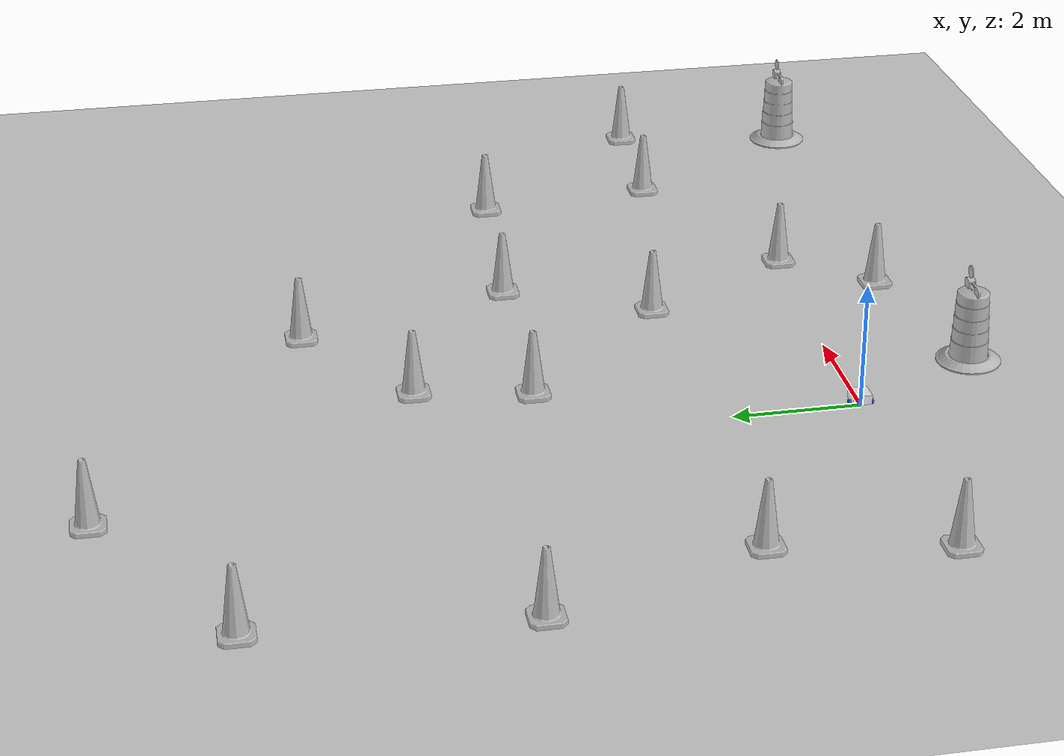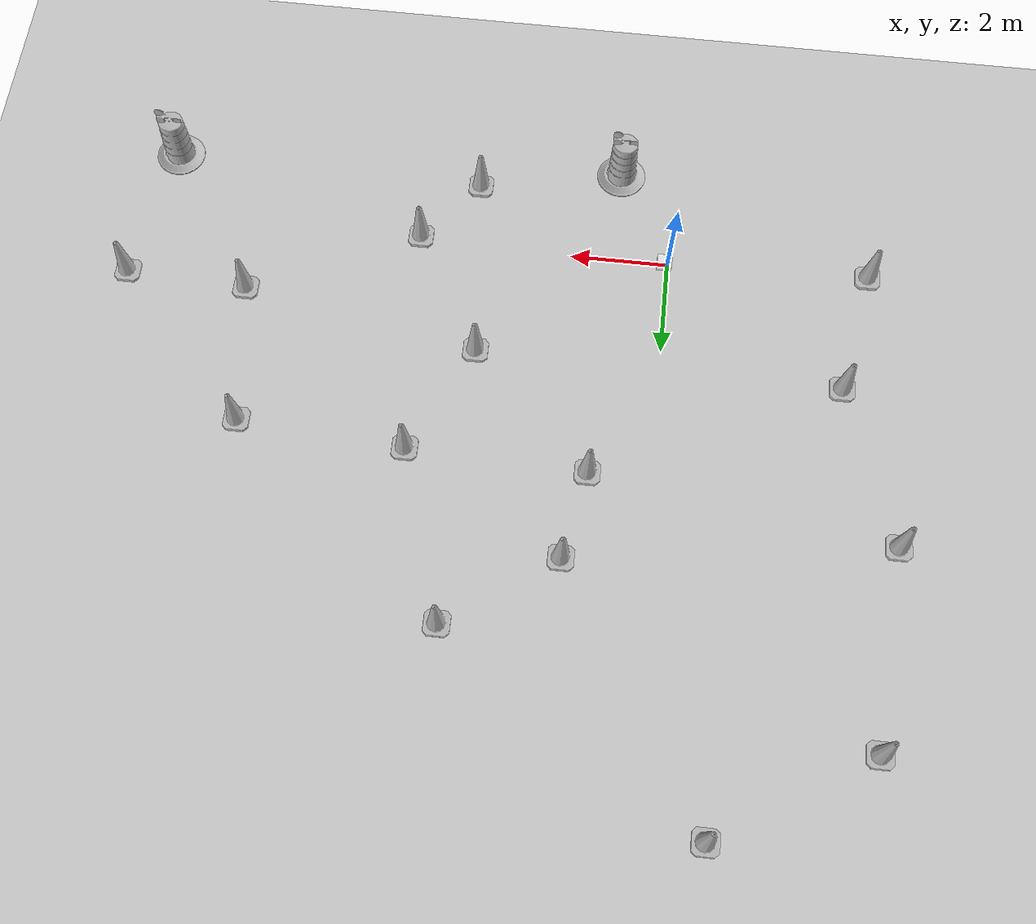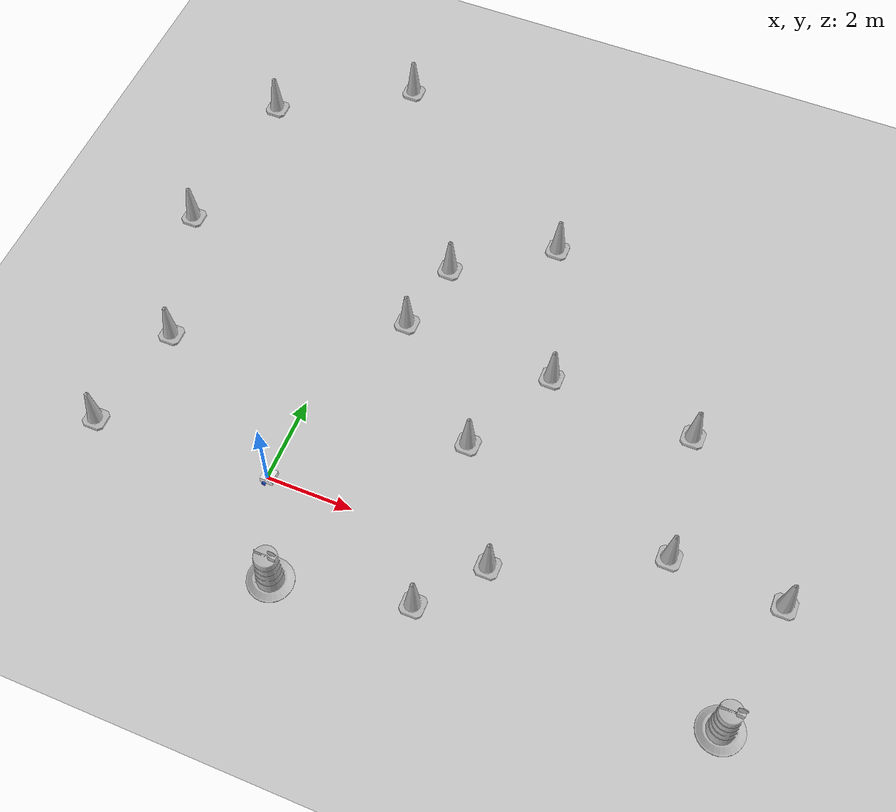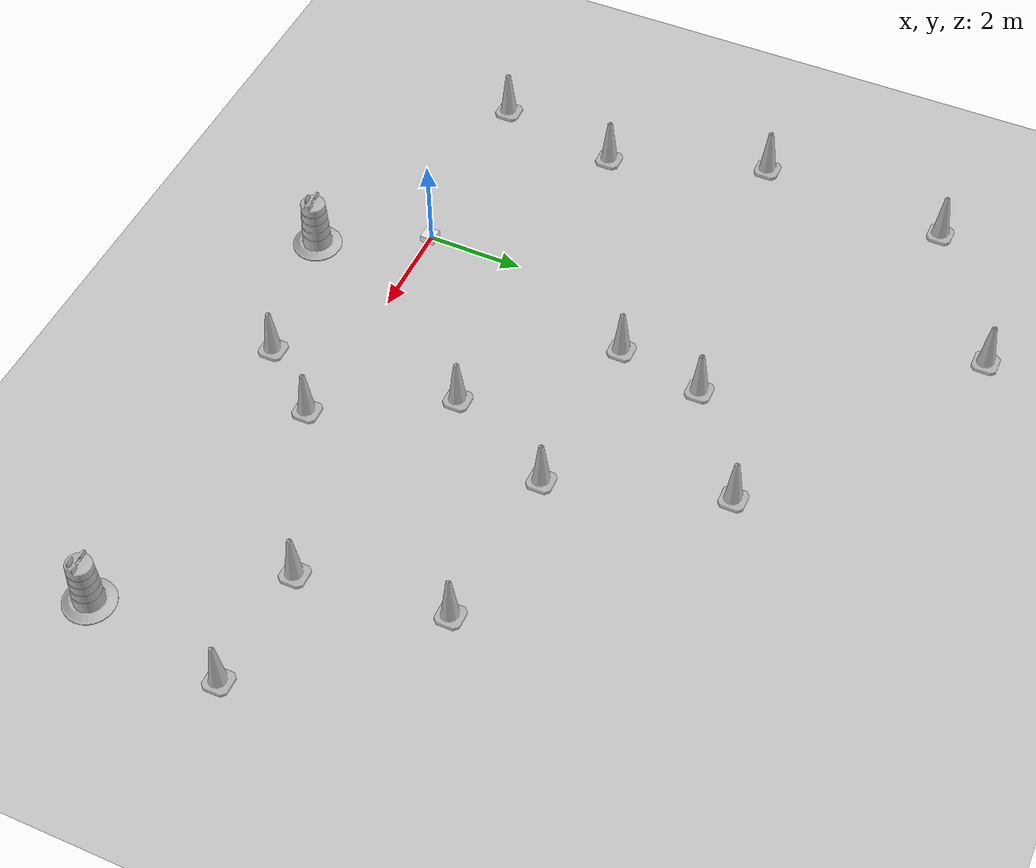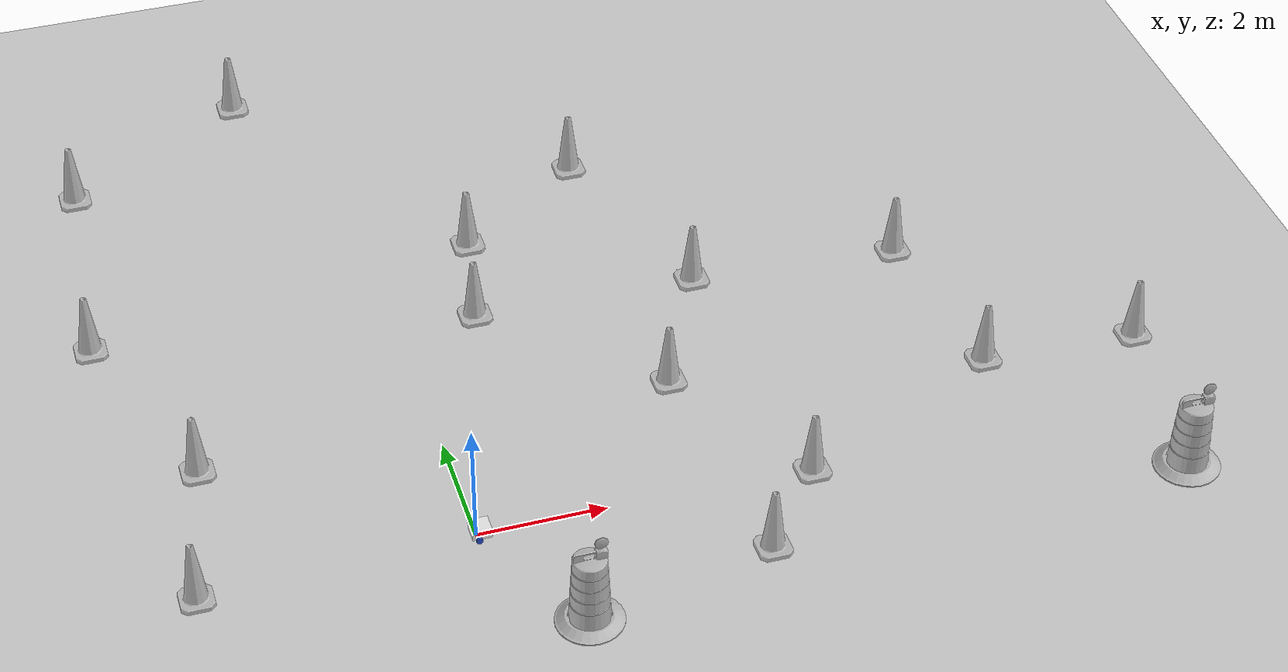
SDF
<sdf version="1.7">
 <world name="default">
  <light name="sun" type="directional">
   <pose>0 0 10 0 -0 0</pose>
   <diffuse>0.8 0.8 0.8 1</diffuse>
   <specular>0.2 0.2 0.2 1</specular>
   <attenuation>
    <range>1000</range>
    <constant>0.9</constant>
    <linear>0.01</linear>
    <quadratic>0.001</quadratic>
   </attenuation>
   <direction>-0.5 0.1 -0.9</direction>
   <spot><inner_angle>0</inner_angle><outer_angle>0</outer_angle><falloff>0</falloff></spot>
  </light>
  <model name="ground_plane">
   <static>1</static>
   <link name="link">
    <collision name="collision">
     <geometry><plane><normal>0 0 1</normal><size>100 100</size></plane></geometry>
     <surface><friction><ode><mu>100</mu><mu2>50</mu2></ode></friction></surface>
    </collision>
    <visual name="visual">
     <cast_shadows>0</cast_shadows>
     <geometry><plane><normal>0 0 1</normal><size>100 100</size></plane></geometry>
     <material>
      <script><uri>file://media/materials/scripts/gazebo.material</uri><name>Gazebo/Grey</name></script>
     </material>
    </visual>
   </link>
  </model>
  <gravity>0 0 -9.8</gravity>
  <magnetic_field>6e-06 2.3e-05 -4.2e-05</magnetic_field>
  <atmosphere type="adiabatic"/>
  <physics type="ode">
   <max_step_size>0.001</max_step_size>
   <real_time_factor>1</real_time_factor>
   <real_time_update_rate>1000</real_time_update_rate>
  </physics>
  <scene><ambient>0.4 0.4 0.4 1</ambient><background>0.7 0.7 0.7 1</background><shadows>1</shadows></scene>
  <audio><device>default</device></audio>
  <spherical_coordinates>
   <surface_model>EARTH_WGS84</surface_model>
   <latitude_deg>0</latitude_deg>
   <longitude_deg>0</longitude_deg>
   <elevation>0</elevation>
   <heading_deg>0</heading_deg>
  </spherical_coordinates>
  <model name="my_bot">
   <link name="base_link">
    <inertial>
     <pose>0.065 0 0.0625 0 -0 0</pose>
     <mass>0.6</mass>
     <inertia>
      <ixx>0.00525625</ixx>
      <ixy>0</ixy>
      <ixz>0.0005625</ixz>
      <iyy>0.00593125</iyy>
      <iyz>0</iyz>
      <izz>0.008275</izz>
     </inertia>
    </inertial>
    <collision name="base_link_fixed_joint_lump__chassis_collision">
     <pose>0.05 0 0.075 0 -0 0</pose>
     <geometry><box><size>0.3 0.3 0.15</size></box></geometry>
    </collision>
    <collision name="base_link_fixed_joint_lump__caster_wheel_collision_1">
     <pose>0.14 0 0 0 -0 0</pose>
     <geometry><sphere><radius>0.05</radius></sphere></geometry>
     <surface><friction><ode><mu>0.001</mu><mu2>0.001</mu2></ode></friction></surface>
    </collision>
    <visual name="base_link_fixed_joint_lump__chassis_visual">
     <pose>0.05 0 0.075 0 -0 0</pose>
     <geometry><box><size>0.3 0.3 0.15</size></box></geometry>
     <material>
      <script><name>Gazebo/White</name><uri>file://media/materials/scripts/gazebo.material</uri></script>
     </material>
    </visual>
    <visual name="base_link_fixed_joint_lump__caster_wheel_visual_1">
     <pose>0.14 0 0 0 -0 0</pose>
     <geometry><sphere><radius>0.05</radius></sphere></geometry>
     <material>
      <script><name>Gazebo/Black</name><uri>file://media/materials/scripts/gazebo.material</uri></script>
     </material>
    </visual>
   </link>
   <joint name="left_wheel_joint" type="revolute">
    <pose relative_to="base_link">0 0.175 0 -1.5708 0 0</pose>
    <parent>base_link</parent>
    <child>left_wheel</child>
    <axis>
     <xyz>0 0 1</xyz>
     <limit><lower>-1e+16</lower><upper>1e+16</upper></limit>
     <dynamics><spring_reference>0</spring_reference><spring_stiffness>0</spring_stiffness></dynamics>
    </axis>
   </joint>
   <link name="left_wheel">
    <pose relative_to="left_wheel_joint">0 0 0 0 -0 0</pose>
    <inertial>
     <mass>0.1</mass>
     <inertia>
      <ixx>7.58333e-05</ixx>
      <ixy>0</ixy>
      <ixz>0</ixz>
      <iyy>7.58333e-05</iyy>
      <iyz>0</iyz>
      <izz>0.000125</izz>
     </inertia>
    </inertial>
    <collision name="left_wheel_collision">
     <geometry><cylinder><length>0.04</length><radius>0.05</radius></cylinder></geometry>
    </collision>
    <visual name="left_wheel_visual">
     <geometry><cylinder><length>0.04</length><radius>0.05</radius></cylinder></geometry>
     <material>
      <script><name>Gazebo/Blue</name><uri>file://media/materials/scripts/gazebo.material</uri></script>
     </material>
    </visual>
   </link>
   <joint name="right_wheel_joint" type="revolute">
    <pose relative_to="base_link">0 -0.175 0 1.5708 -0 0</pose>
    <parent>base_link</parent>
    <child>right_wheel</child>
    <axis>
     <xyz>0 0 -1</xyz>
     <limit><lower>-1e+16</lower><upper>1e+16</upper></limit>
     <dynamics><spring_reference>0</spring_reference><spring_stiffness>0</spring_stiffness></dynamics>
    </axis>
   </joint>
   <link name="right_wheel">
    <pose relative_to="right_wheel_joint">0 0 0 0 -0 0</pose>
    <inertial>
     <mass>0.1</mass>
     <inertia>
      <ixx>7.58333e-05</ixx>
      <ixy>0</ixy>
      <ixz>0</ixz>
      <iyy>7.58333e-05</iyy>
      <iyz>0</iyz>
      <izz>0.000125</izz>
     </inertia>
    </inertial>
    <collision name="right_wheel_collision">
     <geometry><cylinder><length>0.04</length><radius>0.05</radius></cylinder></geometry>
    </collision>
    <visual name="right_wheel_visual">
     <geometry><cylinder><length>0.04</length><radius>0.05</radius></cylinder></geometry>
     <material>
      <script><name>Gazebo/Blue</name><uri>file://media/materials/scripts/gazebo.material</uri></script>
     </material>
    </visual>
   </link>
   <static>0</static>
   <plugin name="diff_drive" filename="libgazebo_ros_diff_drive.so">
    <left_joint>left_wheel_joint</left_joint>
    <right_joint>right_wheel_joint</right_joint>
    <wheel_separation>0.35</wheel_separation>
    <wheel_diameter>0.1</wheel_diameter>
    <max_wheel_torque>200</max_wheel_torque>
    <max_wheel_acceleration>10.0</max_wheel_acceleration>
    <odometry_frame>odom</odometry_frame>
    <robot_base_frame>base_link</robot_base_frame>
    <publish_odom>1</publish_odom>
    <publish_odom_tf>1</publish_odom_tf>
    <publish_wheel_tf>1</publish_wheel_tf>
   </plugin>
   <pose>0.01438 4.5e-05 0.05 0 1e-06 0.000223</pose>
  </model>
  <model name="Construction Barrel">
   <link name="link">
    <inertial>
     <pose>0 0 0.4 0 -0 0</pose>
     <mass>500</mass>
     <inertia><ixx>51.2096</ixx><iyy>51.2096</iyy><izz>25</izz><ixy>0</ixy><ixz>0</ixz><iyz>0</iyz></inertia>
    </inertial>
    <collision name="collision">
     <geometry><mesh><uri>model://construction_barrel/meshes/construction_barrel.dae</uri></mesh></geometry>
    </collision>
    <visual name="visual">
     <geometry><mesh><uri>model://construction_barrel/meshes/construction_barrel.dae</uri></mesh></geometry>
    </visual>
   </link>
   <pose>1.10884 -2.09456 1e-06 3e-06 2e-06 -2.6e-05</pose>
  </model>
  <model name="Construction Cone">
   <link name="link">
    <collision name="collision">
     <geometry>
      <mesh><scale>10 10 10</scale><uri>model://construction_cone/meshes/construction_cone.dae</uri></mesh>
     </geometry>
    </collision>
    <visual name="visual">
     <geometry>
      <mesh><scale>10 10 10</scale><uri>model://construction_cone/meshes/construction_cone.dae</uri></mesh>
     </geometry>
    </visual>
    <inertial>
     <inertia><ixx>1</ixx><ixy>0</ixy><ixz>0</ixz><iyy>1</iyy><iyz>0</iyz><izz>1</izz></inertia>
     <mass>1</mass>
    </inertial>
   </link>
   <pose>4.04453 -1.49338 -1e-05 0 -0 0</pose>
  </model>
  <model name="Construction Cone_0">
   <link name="link">
    <collision name="collision">
     <geometry>
      <mesh><scale>10 10 10</scale><uri>model://construction_cone/meshes/construction_cone.dae</uri></mesh>
     </geometry>
    </collision>
    <visual name="visual">
     <geometry>
      <mesh><scale>10 10 10</scale><uri>model://construction_cone/meshes/construction_cone.dae</uri></mesh>
     </geometry>
    </visual>
    <inertial>
     <inertia><ixx>1</ixx><ixy>0</ixy><ixz>0</ixz><iyy>1</iyy><iyz>0</iyz><izz>1</izz></inertia>
     <mass>1</mass>
    </inertial>
   </link>
   <pose>5.14574 -0.125704 -0 0 -0 0</pose>
  </model>
  <model name="Construction Cone_1">
   <link name="link">
    <collision name="collision">
     <geometry>
      <mesh><scale>10 10 10</scale><uri>model://construction_cone/meshes/construction_cone.dae</uri></mesh>
     </geometry>
    </collision>
    <visual name="visual">
     <geometry>
      <mesh><scale>10 10 10</scale><uri>model://construction_cone/meshes/construction_cone.dae</uri></mesh>
     </geometry>
    </visual>
    <inertial>
     <inertia><ixx>1</ixx><ixy>0</ixy><ixz>0</ixz><iyy>1</iyy><iyz>0</iyz><izz>1</izz></inertia>
     <mass>1</mass>
    </inertial>
   </link>
   <pose>3.7028 2.40839 -1e-05 -1e-06 0 0</pose>
  </model>
  <model name="Construction Cone_2">
   <link name="link">
    <collision name="collision">
     <geometry>
      <mesh><scale>10 10 10</scale><uri>model://construction_cone/meshes/construction_cone.dae</uri></mesh>
     </geometry>
    </collision>
    <visual name="visual">
     <geometry>
      <mesh><scale>10 10 10</scale><uri>model://construction_cone/meshes/construction_cone.dae</uri></mesh>
     </geometry>
    </visual>
    <inertial>
     <inertia><ixx>1</ixx><ixy>0</ixy><ixz>0</ixz><iyy>1</iyy><iyz>0</iyz><izz>1</izz></inertia>
     <mass>1</mass>
    </inertial>
   </link>
   <pose>1.23835 4.8104 -0 0 -1e-06 0</pose>
  </model>
  <model name="Construction Cone_3">
   <link name="link">
    <collision name="collision">
     <geometry>
      <mesh><scale>10 10 10</scale><uri>model://construction_cone/meshes/construction_cone.dae</uri></mesh>
     </geometry>
    </collision>
    <visual name="visual">
     <geometry>
      <mesh><scale>10 10 10</scale><uri>model://construction_cone/meshes/construction_cone.dae</uri></mesh>
     </geometry>
    </visual>
    <inertial>
     <inertia><ixx>1</ixx><ixy>0</ixy><ixz>0</ixz><iyy>1</iyy><iyz>0</iyz><izz>1</izz></inertia>
     <mass>1</mass>
    </inertial>
   </link>
   <pose>1.58232 6.59847 -6e-06 -4e-06 0 0</pose>
  </model>
  <model name="Construction Cone_4">
   <link name="link">
    <collision name="collision">
     <geometry>
      <mesh><scale>10 10 10</scale><uri>model://construction_cone/meshes/construction_cone.dae</uri></mesh>
     </geometry>
    </collision>
    <visual name="visual">
     <geometry>
      <mesh><scale>10 10 10</scale><uri>model://construction_cone/meshes/construction_cone.dae</uri></mesh>
     </geometry>
    </visual>
    <inertial>
     <inertia><ixx>1</ixx><ixy>0</ixy><ixz>0</ixz><iyy>1</iyy><iyz>0</iyz><izz>1</izz></inertia>
     <mass>1</mass>
    </inertial>
   </link>
   <pose>4.82147 4.69255 -6e-06 -4e-06 0 0</pose>
  </model>
  <model name="Construction Cone_5">
   <link name="link">
    <collision name="collision">
     <geometry>
      <mesh><scale>10 10 10</scale><uri>model://construction_cone/meshes/construction_cone.dae</uri></mesh>
     </geometry>
    </collision>
    <visual name="visual">
     <geometry>
      <mesh><scale>10 10 10</scale><uri>model://construction_cone/meshes/construction_cone.dae</uri></mesh>
     </geometry>
    </visual>
    <inertial>
     <inertia><ixx>1</ixx><ixy>0</ixy><ixz>0</ixz><iyy>1</iyy><iyz>0</iyz><izz>1</izz></inertia>
     <mass>1</mass>
    </inertial>
   </link>
   <pose>8.56072 1.49754 -0 0 -0 0</pose>
  </model>
  <model name="Construction Cone_6">
   <link name="link">
    <collision name="collision">
     <geometry>
      <mesh><scale>10 10 10</scale><uri>model://construction_cone/meshes/construction_cone.dae</uri></mesh>
     </geometry>
    </collision>
    <visual name="visual">
     <geometry>
      <mesh><scale>10 10 10</scale><uri>model://construction_cone/meshes/construction_cone.dae</uri></mesh>
     </geometry>
    </visual>
    <inertial>
     <inertia><ixx>1</ixx><ixy>0</ixy><ixz>0</ixz><iyy>1</iyy><iyz>0</iyz><izz>1</izz></inertia>
     <mass>1</mass>
    </inertial>
   </link>
   <pose>-4.11996 -0.143793 -8e-06 1e-06 -0 0</pose>
  </model>
  <model name="Construction Cone_7">
   <link name="link">
    <collision name="collision">
     <geometry>
      <mesh><scale>10 10 10</scale><uri>model://construction_cone/meshes/construction_cone.dae</uri></mesh>
     </geometry>
    </collision>
    <visual name="visual">
     <geometry>
      <mesh><scale>10 10 10</scale><uri>model://construction_cone/meshes/construction_cone.dae</uri></mesh>
     </geometry>
    </visual>
    <inertial>
     <inertia><ixx>1</ixx><ixy>0</ixy><ixz>0</ixz><iyy>1</iyy><iyz>0</iyz><izz>1</izz></inertia>
     <mass>1</mass>
    </inertial>
   </link>
   <pose>-3.63586 2.4645 -3e-06 -3e-06 -1e-06 -0</pose>
  </model>
  <model name="Construction Cone_8">
   <link name="link">
    <collision name="collision">
     <geometry>
      <mesh><scale>10 10 10</scale><uri>model://construction_cone/meshes/construction_cone.dae</uri></mesh>
     </geometry>
    </collision>
    <visual name="visual">
     <geometry>
      <mesh><scale>10 10 10</scale><uri>model://construction_cone/meshes/construction_cone.dae</uri></mesh>
     </geometry>
    </visual>
    <inertial>
     <inertia><ixx>1</ixx><ixy>0</ixy><ixz>0</ixz><iyy>1</iyy><iyz>0</iyz><izz>1</izz></inertia>
     <mass>1</mass>
    </inertial>
   </link>
   <pose>-4.74479 5.68755 -9e-06 1e-06 -1e-06 0</pose>
  </model>
  <model name="Construction Cone_9">
   <link name="link">
    <collision name="collision">
     <geometry>
      <mesh><scale>10 10 10</scale><uri>model://construction_cone/meshes/construction_cone.dae</uri></mesh>
     </geometry>
    </collision>
    <visual name="visual">
     <geometry>
      <mesh><scale>10 10 10</scale><uri>model://construction_cone/meshes/construction_cone.dae</uri></mesh>
     </geometry>
    </visual>
    <inertial>
     <inertia><ixx>1</ixx><ixy>0</ixy><ixz>0</ixz><iyy>1</iyy><iyz>0</iyz><izz>1</izz></inertia>
     <mass>1</mass>
    </inertial>
   </link>
   <pose>-4.41023 9.63851 -0 0 -0 0</pose>
  </model>
  <model name="Construction Cone_10">
   <link name="link">
    <collision name="collision">
     <geometry>
      <mesh><scale>10 10 10</scale><uri>model://construction_cone/meshes/construction_cone.dae</uri></mesh>
     </geometry>
    </collision>
    <visual name="visual">
     <geometry>
      <mesh><scale>10 10 10</scale><uri>model://construction_cone/meshes/construction_cone.dae</uri></mesh>
     </geometry>
    </visual>
    <inertial>
     <inertia><ixx>1</ixx><ixy>0</ixy><ixz>0</ixz><iyy>1</iyy><iyz>0</iyz><izz>1</izz></inertia>
     <mass>1</mass>
    </inertial>
   </link>
   <pose>-1.39858 11.4855 -9e-06 -5e-06 -0 -0</pose>
  </model>
  <model name="Construction Cone_11">
   <link name="link">
    <collision name="collision">
     <geometry>
      <mesh><scale>10 10 10</scale><uri>model://construction_cone/meshes/construction_cone.dae</uri></mesh>
     </geometry>
    </collision>
    <visual name="visual">
     <geometry>
      <mesh><scale>10 10 10</scale><uri>model://construction_cone/meshes/construction_cone.dae</uri></mesh>
     </geometry>
    </visual>
    <inertial>
     <inertia><ixx>1</ixx><ixy>0</ixy><ixz>0</ixz><iyy>1</iyy><iyz>0</iyz><izz>1</izz></inertia>
     <mass>1</mass>
    </inertial>
   </link>
   <pose>3.73914 8.12654 -0 -0 -0 -0</pose>
  </model>
  <model name="Construction Cone_12">
   <link name="link">
    <collision name="collision">
     <geometry>
      <mesh><scale>10 10 10</scale><uri>model://construction_cone/meshes/construction_cone.dae</uri></mesh>
     </geometry>
    </collision>
    <visual name="visual">
     <geometry>
      <mesh><scale>10 10 10</scale><uri>model://construction_cone/meshes/construction_cone.dae</uri></mesh>
     </geometry>
    </visual>
    <inertial>
     <inertia><ixx>1</ixx><ixy>0</ixy><ixz>0</ixz><iyy>1</iyy><iyz>0</iyz><izz>1</izz></inertia>
     <mass>1</mass>
    </inertial>
   </link>
   <pose>8.19491 4.45088 -5e-06 -4e-06 1e-06 0</pose>
  </model>
  <model name="Construction Cone_13">
   <link name="link">
    <collision name="collision">
     <geometry>
      <mesh><scale>10 10 10</scale><uri>model://construction_cone/meshes/construction_cone.dae</uri></mesh>
     </geometry>
    </collision>
    <visual name="visual">
     <geometry>
      <mesh><scale>10 10 10</scale><uri>model://construction_cone/meshes/construction_cone.dae</uri></mesh>
     </geometry>
    </visual>
    <inertial>
     <inertia><ixx>1</ixx><ixy>0</ixy><ixz>0</ixz><iyy>1</iyy><iyz>0</iyz><izz>1</izz></inertia>
     <mass>1</mass>
    </inertial>
   </link>
   <pose>11.0514 1.37519 -0 0 -0 0</pose>
  </model>
  <model name="Construction Barrel_0">
   <link name="link">
    <inertial>
     <pose>0 0 0.4 0 -0 0</pose>
     <mass>500</mass>
     <inertia><ixx>51.2096</ixx><iyy>51.2096</iyy><izz>25</izz><ixy>0</ixy><ixz>0</ixz><iyz>0</iyz></inertia>
    </inertial>
    <collision name="collision">
     <geometry><mesh><uri>model://construction_barrel/meshes/construction_barrel.dae</uri></mesh></geometry>
    </collision>
    <visual name="visual">
     <geometry><mesh><uri>model://construction_barrel/meshes/construction_barrel.dae</uri></mesh></geometry>
    </visual>
   </link>
   <pose>10.5508 -1.58436 -1e-06 3e-06 -2e-06 -2e-06</pose>
  </model>
 </world>
</sdf>
